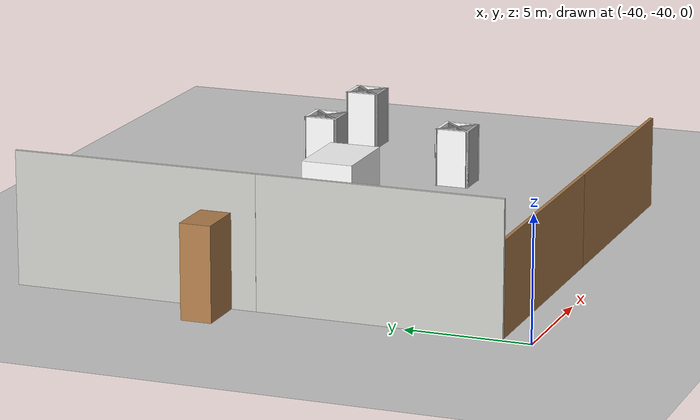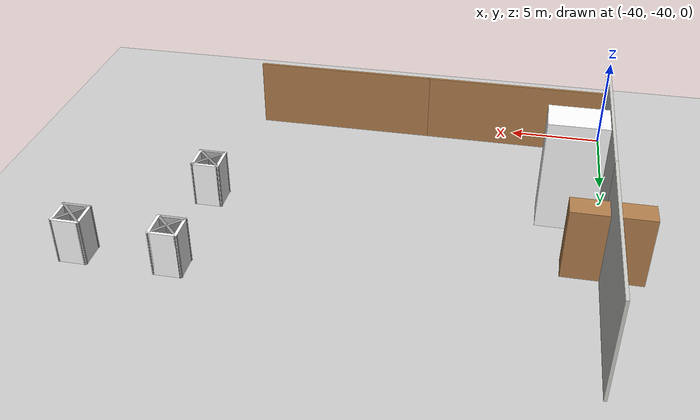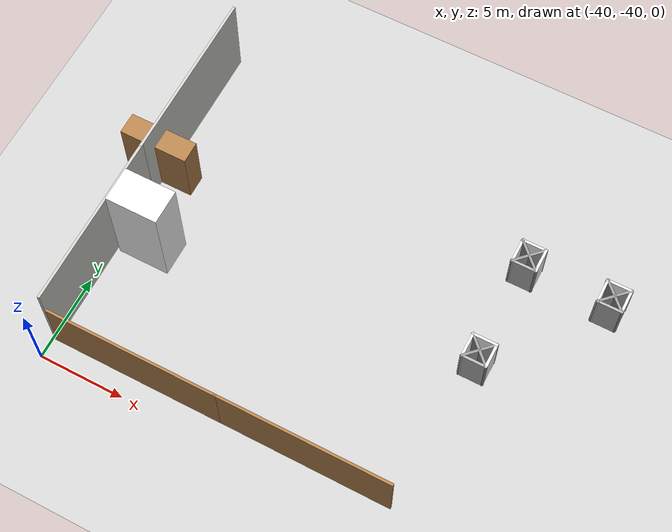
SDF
<sdf version="1.7">
 <world name="default">
  <model name="ground_plane">
   <static>1</static>
   <link name="link">
    <collision name="collision">
     <geometry><plane><normal>0 0 1</normal><size>100 100</size></plane></geometry>
     <surface>
      <contact><collide_bitmask>65535</collide_bitmask></contact>
      <friction><ode><mu>100</mu><mu2>50</mu2></ode></friction>
     </surface>
    </collision>
    <visual name="visual">
     <cast_shadows>0</cast_shadows>
     <geometry><plane><normal>0 0 1</normal><size>100 100</size></plane></geometry>
     <material>
      <script><uri>file://media/materials/scripts/gazebo.material</uri><name>Gazebo/Grey</name></script>
     </material>
    </visual>
   </link>
  </model>
  <model name="Untitled_0_clone_3">
   <link name="Wall_2">
    <pose>-0.3075 -1.8625 0 0 0 -1.5708</pose>
    <inertial>
     <mass>1</mass>
     <inertia><ixx>1</ixx><ixy>0</ixy><ixz>0</ixz><iyy>1</iyy><iyz>0</iyz><izz>1</izz></inertia>
    </inertial>
    <visual name="Wall_2_Visual">
     <pose>0 0 2.7 0 -0 0</pose>
     <geometry><box><size>10 0.15 5.4</size></box></geometry>
     <material>
      <script><uri>file://media/materials/scripts/gazebo.material</uri><name>Gazebo/CeilingTiled</name></script>
      <ambient>1 1 1 1</ambient>
      <shader type="pixel"><normal_map>__default__</normal_map></shader>
      <diffuse>1 1 1 1</diffuse>
      <specular>0 0 0 1</specular>
      <emissive>0 0 0 1</emissive>
     </material>
     <meta><layer>0</layer></meta>
    </visual>
    <collision name="Wall_2_Collision">
     <pose>0 0 2.7 0 -0 0</pose>
     <geometry><box><size>10 0.15 5.4</size></box></geometry>
     <surface>
      <friction>
       <ode><mu>1</mu><mu2>1</mu2><fdir1>0 0 0</fdir1><slip1>0</slip1><slip2>0</slip2></ode>
       <torsional>
        <coefficient>1</coefficient>
        <patch_radius>0</patch_radius>
        <surface_radius>0</surface_radius>
        <use_patch_radius>1</use_patch_radius>
        <ode><slip>0</slip></ode>
       </torsional>
      </friction>
      <bounce><restitution_coefficient>0</restitution_coefficient><threshold>1e+06</threshold></bounce>
      <contact>
       <collide_without_contact>0</collide_without_contact>
       <collide_without_contact_bitmask>1</collide_without_contact_bitmask>
       <collide_bitmask>1</collide_bitmask>
       <ode>
        <soft_cfm>0</soft_cfm>
        <soft_erp>0.2</soft_erp>
        <kp>1e+13</kp>
        <kd>1</kd>
        <max_vel>0.01</max_vel>
        <min_depth>0</min_depth>
       </ode>
       <bullet>
        <split_impulse>1</split_impulse>
        <split_impulse_penetration_threshold>-0.01</split_impulse_penetration_threshold>
        <soft_cfm>0</soft_cfm>
        <soft_erp>0.2</soft_erp>
        <kp>1e+13</kp>
        <kd>1</kd>
       </bullet>
      </contact>
     </surface>
    </collision>
   </link>
   <static>1</static>
   <pose>-39.511 -22.1279 0 0 -0 0</pose>
  </model>
  <model name="Untitled_0_clone_4">
   <link name="Wall_2">
    <pose>-0.3075 -1.8625 0 0 0 -1.5708</pose>
    <inertial>
     <mass>1</mass>
     <inertia><ixx>1</ixx><ixy>0</ixy><ixz>0</ixz><iyy>1</iyy><iyz>0</iyz><izz>1</izz></inertia>
    </inertial>
    <visual name="Wall_2_Visual">
     <pose>0 0 2.7 0 -0 0</pose>
     <geometry><box><size>10 0.15 5.4</size></box></geometry>
     <material>
      <script><uri>file://media/materials/scripts/gazebo.material</uri><name>Gazebo/CeilingTiled</name></script>
      <ambient>1 1 1 1</ambient>
      <shader type="pixel"><normal_map>__default__</normal_map></shader>
      <diffuse>1 1 1 1</diffuse>
      <specular>0 0 0 1</specular>
      <emissive>0 0 0 1</emissive>
     </material>
     <meta><layer>0</layer></meta>
    </visual>
    <collision name="Wall_2_Collision">
     <pose>0 0 2.7 0 -0 0</pose>
     <geometry><box><size>10 0.15 5.4</size></box></geometry>
     <surface>
      <friction>
       <ode><mu>1</mu><mu2>1</mu2><fdir1>0 0 0</fdir1><slip1>0</slip1><slip2>0</slip2></ode>
       <torsional>
        <coefficient>1</coefficient>
        <patch_radius>0</patch_radius>
        <surface_radius>0</surface_radius>
        <use_patch_radius>1</use_patch_radius>
        <ode><slip>0</slip></ode>
       </torsional>
      </friction>
      <bounce><restitution_coefficient>0</restitution_coefficient><threshold>1e+06</threshold></bounce>
      <contact>
       <collide_without_contact>0</collide_without_contact>
       <collide_without_contact_bitmask>1</collide_without_contact_bitmask>
       <collide_bitmask>1</collide_bitmask>
       <ode>
        <soft_cfm>0</soft_cfm>
        <soft_erp>0.2</soft_erp>
        <kp>1e+13</kp>
        <kd>1</kd>
        <max_vel>0.01</max_vel>
        <min_depth>0</min_depth>
       </ode>
       <bullet>
        <split_impulse>1</split_impulse>
        <split_impulse_penetration_threshold>-0.01</split_impulse_penetration_threshold>
        <soft_cfm>0</soft_cfm>
        <soft_erp>0.2</soft_erp>
        <kp>1e+13</kp>
        <kd>1</kd>
       </bullet>
      </contact>
     </surface>
    </collision>
   </link>
   <static>1</static>
   <pose>-39.5068 -31.9659 0 0 -0 0</pose>
  </model>
  <model name="Untitled_clone_clone_1_clone">
   <link name="Wall_0">
    <pose>-0.8775 -4.2975 0 0 -0 0</pose>
    <inertial>
     <mass>1</mass>
     <inertia><ixx>1</ixx><ixy>0</ixy><ixz>0</ixz><iyy>1</iyy><iyz>0</iyz><izz>1</izz></inertia>
    </inertial>
    <visual name="Wall_0_Visual">
     <pose>0 0 1.9 0 -0 0</pose>
     <geometry><box><size>10 0.15 3.8</size></box></geometry>
     <material>
      <script><uri>file://media/materials/scripts/gazebo.material</uri><name>Gazebo/Wood</name></script>
      <ambient>1 1 1 1</ambient>
      <shader type="pixel"><normal_map>__default__</normal_map></shader>
      <diffuse>1 1 1 1</diffuse>
      <specular>0.2 0.2 0.2 1</specular>
      <emissive>0 0 0 1</emissive>
     </material>
     <meta><layer>0</layer></meta>
    </visual>
    <collision name="Wall_0_Collision">
     <pose>0 0 1.9 0 -0 0</pose>
     <geometry><box><size>10 0.15 3.8</size></box></geometry>
     <surface>
      <friction>
       <ode><mu>1</mu><mu2>1</mu2><fdir1>0 0 0</fdir1><slip1>0</slip1><slip2>0</slip2></ode>
       <torsional>
        <coefficient>1</coefficient>
        <patch_radius>0</patch_radius>
        <surface_radius>0</surface_radius>
        <use_patch_radius>1</use_patch_radius>
        <ode><slip>0</slip></ode>
       </torsional>
      </friction>
      <bounce><restitution_coefficient>0</restitution_coefficient><threshold>1e+06</threshold></bounce>
      <contact>
       <collide_without_contact>0</collide_without_contact>
       <collide_without_contact_bitmask>1</collide_without_contact_bitmask>
       <collide_bitmask>1</collide_bitmask>
       <ode>
        <soft_cfm>0</soft_cfm>
        <soft_erp>0.2</soft_erp>
        <kp>1e+13</kp>
        <kd>1</kd>
        <max_vel>0.01</max_vel>
        <min_depth>0</min_depth>
       </ode>
       <bullet>
        <split_impulse>1</split_impulse>
        <split_impulse_penetration_threshold>-0.01</split_impulse_penetration_threshold>
        <soft_cfm>0</soft_cfm>
        <soft_erp>0.2</soft_erp>
        <kp>1e+13</kp>
        <kd>1</kd>
       </bullet>
      </contact>
     </surface>
    </collision>
   </link>
   <static>1</static>
   <pose>-33.9208 -34.4502 0 0 -0 0</pose>
  </model>
  <model name="Untitled_clone_clone_1_clone_0">
   <link name="Wall_0">
    <pose>-0.8775 -4.2975 0 0 -0 0</pose>
    <inertial>
     <mass>1</mass>
     <inertia><ixx>1</ixx><ixy>0</ixy><ixz>0</ixz><iyy>1</iyy><iyz>0</iyz><izz>1</izz></inertia>
    </inertial>
    <visual name="Wall_0_Visual">
     <pose>0 0 1.9 0 -0 0</pose>
     <geometry><box><size>10 0.15 3.8</size></box></geometry>
     <material>
      <script><uri>file://media/materials/scripts/gazebo.material</uri><name>Gazebo/Wood</name></script>
      <ambient>1 1 1 1</ambient>
      <shader type="pixel"><normal_map>__default__</normal_map></shader>
      <diffuse>1 1 1 1</diffuse>
      <specular>0.2 0.2 0.2 1</specular>
      <emissive>0 0 0 1</emissive>
     </material>
     <meta><layer>0</layer></meta>
    </visual>
    <collision name="Wall_0_Collision">
     <pose>0 0 1.9 0 -0 0</pose>
     <geometry><box><size>10 0.15 3.8</size></box></geometry>
     <surface>
      <friction>
       <ode><mu>1</mu><mu2>1</mu2><fdir1>0 0 0</fdir1><slip1>0</slip1><slip2>0</slip2></ode>
       <torsional>
        <coefficient>1</coefficient>
        <patch_radius>0</patch_radius>
        <surface_radius>0</surface_radius>
        <use_patch_radius>1</use_patch_radius>
        <ode><slip>0</slip></ode>
       </torsional>
      </friction>
      <bounce><restitution_coefficient>0</restitution_coefficient><threshold>1e+06</threshold></bounce>
      <contact>
       <collide_without_contact>0</collide_without_contact>
       <collide_without_contact_bitmask>1</collide_without_contact_bitmask>
       <collide_bitmask>1</collide_bitmask>
       <ode>
        <soft_cfm>0</soft_cfm>
        <soft_erp>0.2</soft_erp>
        <kp>1e+13</kp>
        <kd>1</kd>
        <max_vel>0.01</max_vel>
        <min_depth>0</min_depth>
       </ode>
       <bullet>
        <split_impulse>1</split_impulse>
        <split_impulse_penetration_threshold>-0.01</split_impulse_penetration_threshold>
        <soft_cfm>0</soft_cfm>
        <soft_erp>0.2</soft_erp>
        <kp>1e+13</kp>
        <kd>1</kd>
       </bullet>
      </contact>
     </surface>
    </collision>
   </link>
   <static>1</static>
   <pose>-24.0991 -34.448 0 0 -0 0</pose>
  </model>
  <model name="Untitled_clone_clone_0_clone_clone_0_clone">
   <link name="Wall_0">
    <pose>-0.877501 -4.2975 0 0 -0 0</pose>
    <inertial>
     <mass>1</mass>
     <inertia><ixx>1</ixx><ixy>0</ixy><ixz>0</ixz><iyy>1</iyy><iyz>0</iyz><izz>1</izz></inertia>
    </inertial>
    <visual name="Wall_0_Visual">
     <pose>0 0 1.9 0 -0 0</pose>
     <geometry><box><size>4 1.25 3.8</size></box></geometry>
     <material>
      <script><uri>file://media/materials/scripts/gazebo.material</uri><name>Gazebo/Wood</name></script>
      <ambient>1 1 1 1</ambient>
      <shader type="pixel"><normal_map>__default__</normal_map></shader>
      <diffuse>1 1 1 1</diffuse>
      <specular>0.2 0.2 0.2 1</specular>
      <emissive>0 0 0 1</emissive>
     </material>
     <meta><layer>0</layer></meta>
    </visual>
    <collision name="Wall_0_Collision">
     <pose>0 0 1.9 0 -0 0</pose>
     <geometry><box><size>4 1.25 3.8</size></box></geometry>
     <surface>
      <friction>
       <ode><mu>1</mu><mu2>1</mu2><fdir1>0 0 0</fdir1><slip1>0</slip1><slip2>0</slip2></ode>
       <torsional>
        <coefficient>1</coefficient>
        <patch_radius>0</patch_radius>
        <surface_radius>0</surface_radius>
        <use_patch_radius>1</use_patch_radius>
        <ode><slip>0</slip></ode>
       </torsional>
      </friction>
      <bounce><restitution_coefficient>0</restitution_coefficient><threshold>1e+06</threshold></bounce>
      <contact>
       <collide_without_contact>0</collide_without_contact>
       <collide_without_contact_bitmask>1</collide_without_contact_bitmask>
       <collide_bitmask>1</collide_bitmask>
       <ode>
        <soft_cfm>0</soft_cfm>
        <soft_erp>0.2</soft_erp>
        <kp>1e+13</kp>
        <kd>1</kd>
        <max_vel>0.01</max_vel>
        <min_depth>0</min_depth>
       </ode>
       <bullet>
        <split_impulse>1</split_impulse>
        <split_impulse_penetration_threshold>-0.01</split_impulse_penetration_threshold>
        <soft_cfm>0</soft_cfm>
        <soft_erp>0.2</soft_erp>
        <kp>1e+13</kp>
        <kd>1</kd>
       </bullet>
      </contact>
     </surface>
    </collision>
   </link>
   <static>1</static>
   <pose>-39.0031 -23.066 0 0 -0 0</pose>
  </model>
  <model name="Untitled_clone_clone_0_clone_clone_0_clone_0_clone_0_clone_0_clone_2">
   <link name="Wall_0">
    <pose>-0.877501 -4.2975 0 0 -0 0</pose>
    <inertial>
     <mass>1</mass>
     <inertia><ixx>1</ixx><ixy>0</ixy><ixz>0</ixz><iyy>1</iyy><iyz>0</iyz><izz>1</izz></inertia>
    </inertial>
    <visual name="Wall_0_Visual">
     <pose>0 0 3 0 -0 0</pose>
     <geometry><box><size>3 2 6</size></box></geometry>
     <material>
      <script><uri>file://media/materials/scripts/gazebo.material</uri><name>Gazebo/CoM</name></script>
      <ambient>1 1 1 1</ambient>
      <shader type="pixel"><normal_map>__default__</normal_map></shader>
      <diffuse>1 1 1 1</diffuse>
      <specular>0.2 0.2 0.2 1</specular>
      <emissive>0 0 0 1</emissive>
     </material>
     <meta><layer>0</layer></meta>
    </visual>
    <collision name="Wall_0_Collision">
     <pose>0 0 3 0 -0 0</pose>
     <geometry><box><size>3 2 6</size></box></geometry>
     <surface>
      <friction>
       <ode><mu>1</mu><mu2>1</mu2><fdir1>0 0 0</fdir1><slip1>0</slip1><slip2>0</slip2></ode>
       <torsional>
        <coefficient>1</coefficient>
        <patch_radius>0</patch_radius>
        <surface_radius>0</surface_radius>
        <use_patch_radius>1</use_patch_radius>
        <ode><slip>0</slip></ode>
       </torsional>
      </friction>
      <bounce><restitution_coefficient>0</restitution_coefficient><threshold>1e+06</threshold></bounce>
      <contact>
       <collide_without_contact>0</collide_without_contact>
       <collide_without_contact_bitmask>1</collide_without_contact_bitmask>
       <collide_bitmask>1</collide_bitmask>
       <ode>
        <soft_cfm>0</soft_cfm>
        <soft_erp>0.2</soft_erp>
        <kp>1e+13</kp>
        <kd>1</kd>
        <max_vel>0.01</max_vel>
        <min_depth>0</min_depth>
       </ode>
       <bullet>
        <split_impulse>1</split_impulse>
        <split_impulse_penetration_threshold>-0.01</split_impulse_penetration_threshold>
        <soft_cfm>0</soft_cfm>
        <soft_erp>0.2</soft_erp>
        <kp>1e+13</kp>
        <kd>1</kd>
       </bullet>
      </contact>
     </surface>
    </collision>
   </link>
   <static>1</static>
   <pose>-37.1896 -27.4443 0 0 -0 0</pose>
  </model>
  <model name="Untitled_1_clone_3_clone_0">
   <link name="Wall_10">
    <pose>4.92197 -3.43197 0 0 -0 1.5708</pose>
    <inertial>
     <mass>1</mass>
     <inertia><ixx>1</ixx><ixy>0</ixy><ixz>0</ixz><iyy>1</iyy><iyz>0</iyz><izz>1</izz></inertia>
    </inertial>
    <visual name="Wall_10_Visual">
     <pose>0 0 1.25 0 -0 0</pose>
     <geometry><box><size>1.5 0.15 2.5</size></box></geometry>
     <material>
      <script><uri>file://media/materials/scripts/gazebo.material</uri><name>Gazebo/CoM</name></script>
      <ambient>1 1 1 1</ambient>
      <shader type="pixel"><normal_map>__default__</normal_map></shader>
      <diffuse>1 1 1 1</diffuse>
      <specular>0 0 0 1</specular>
      <emissive>0 0 0 1</emissive>
     </material>
     <meta><layer>0</layer></meta>
    </visual>
    <collision name="Wall_10_Collision">
     <pose>0 0 1.25 0 -0 0</pose>
     <geometry><box><size>1.5 0.15 2.5</size></box></geometry>
     <surface>
      <friction>
       <ode><mu>1</mu><mu2>1</mu2><fdir1>0 0 0</fdir1><slip1>0</slip1><slip2>0</slip2></ode>
       <torsional>
        <coefficient>1</coefficient>
        <patch_radius>0</patch_radius>
        <surface_radius>0</surface_radius>
        <use_patch_radius>1</use_patch_radius>
        <ode><slip>0</slip></ode>
       </torsional>
      </friction>
      <bounce><restitution_coefficient>0</restitution_coefficient><threshold>1e+06</threshold></bounce>
      <contact>
       <collide_without_contact>0</collide_without_contact>
       <collide_without_contact_bitmask>1</collide_without_contact_bitmask>
       <collide_bitmask>1</collide_bitmask>
       <ode>
        <soft_cfm>0</soft_cfm>
        <soft_erp>0.2</soft_erp>
        <kp>1e+13</kp>
        <kd>1</kd>
        <max_vel>0.01</max_vel>
        <min_depth>0</min_depth>
       </ode>
       <bullet>
        <split_impulse>1</split_impulse>
        <split_impulse_penetration_threshold>-0.01</split_impulse_penetration_threshold>
        <soft_cfm>0</soft_cfm>
        <soft_erp>0.2</soft_erp>
        <kp>1e+13</kp>
        <kd>1</kd>
       </bullet>
      </contact>
     </surface>
    </collision>
   </link>
   <link name="Wall_11">
    <pose>5.59697 -3.43197 0 0 0 -0.785398</pose>
    <visual name="Wall_11_Visual">
     <pose>0 0 1.25 0 -0 0</pose>
     <geometry><box><size>2.05919 0.15 2.5</size></box></geometry>
     <material>
      <script><uri>file://media/materials/scripts/gazebo.material</uri><name>Gazebo/Grey</name></script>
      <ambient>1 1 1 1</ambient>
      <shader type="pixel"/>
     </material>
     <meta><layer>0</layer></meta>
    </visual>
    <collision name="Wall_11_Collision">
     <pose>0 0 1.25 0 -0 0</pose>
     <geometry><box><size>2.05919 0.15 2.5</size></box></geometry>
     <surface>
      <friction>
       <ode><mu>1</mu><mu2>1</mu2><fdir1>0 0 0</fdir1><slip1>0</slip1><slip2>0</slip2></ode>
       <torsional>
        <coefficient>1</coefficient>
        <patch_radius>0</patch_radius>
        <surface_radius>0</surface_radius>
        <use_patch_radius>1</use_patch_radius>
        <ode><slip>0</slip></ode>
       </torsional>
      </friction>
      <bounce><restitution_coefficient>0</restitution_coefficient><threshold>1e+06</threshold></bounce>
      <contact>
       <collide_without_contact>0</collide_without_contact>
       <collide_without_contact_bitmask>1</collide_without_contact_bitmask>
       <collide_bitmask>1</collide_bitmask>
       <ode>
        <soft_cfm>0</soft_cfm>
        <soft_erp>0.2</soft_erp>
        <kp>1e+13</kp>
        <kd>1</kd>
        <max_vel>0.01</max_vel>
        <min_depth>0</min_depth>
       </ode>
       <bullet>
        <split_impulse>1</split_impulse>
        <split_impulse_penetration_threshold>-0.01</split_impulse_penetration_threshold>
        <soft_cfm>0</soft_cfm>
        <soft_erp>0.2</soft_erp>
        <kp>1e+13</kp>
        <kd>1</kd>
       </bullet>
      </contact>
     </surface>
    </collision>
   </link>
   <link name="Wall_13">
    <pose>5.59697 -3.43197 0 0 -0 0.785398</pose>
    <visual name="Wall_13_Visual">
     <pose>0 0 1.25 0 -0 0</pose>
     <geometry><box><size>2.05919 0.15 2.5</size></box></geometry>
     <material>
      <script><uri>file://media/materials/scripts/gazebo.material</uri><name>Gazebo/Grey</name></script>
      <ambient>1 1 1 1</ambient>
      <shader type="pixel"/>
     </material>
     <meta><layer>0</layer></meta>
    </visual>
    <collision name="Wall_13_Collision">
     <pose>0 0 1.25 0 -0 0</pose>
     <geometry><box><size>2.05919 0.15 2.5</size></box></geometry>
     <surface>
      <friction>
       <ode><mu>1</mu><mu2>1</mu2><fdir1>0 0 0</fdir1><slip1>0</slip1><slip2>0</slip2></ode>
       <torsional>
        <coefficient>1</coefficient>
        <patch_radius>0</patch_radius>
        <surface_radius>0</surface_radius>
        <use_patch_radius>1</use_patch_radius>
        <ode><slip>0</slip></ode>
       </torsional>
      </friction>
      <bounce><restitution_coefficient>0</restitution_coefficient><threshold>1e+06</threshold></bounce>
      <contact>
       <collide_without_contact>0</collide_without_contact>
       <collide_without_contact_bitmask>1</collide_without_contact_bitmask>
       <collide_bitmask>1</collide_bitmask>
       <ode>
        <soft_cfm>0</soft_cfm>
        <soft_erp>0.2</soft_erp>
        <kp>1e+13</kp>
        <kd>1</kd>
        <max_vel>0.01</max_vel>
        <min_depth>0</min_depth>
       </ode>
       <bullet>
        <split_impulse>1</split_impulse>
        <split_impulse_penetration_threshold>-0.01</split_impulse_penetration_threshold>
        <soft_cfm>0</soft_cfm>
        <soft_erp>0.2</soft_erp>
        <kp>1e+13</kp>
        <kd>1</kd>
       </bullet>
      </contact>
     </surface>
    </collision>
   </link>
   <link name="Wall_7">
    <pose>5.59697 -2.75697 0 0 -0 0</pose>
    <inertial>
     <mass>1</mass>
     <inertia><ixx>1</ixx><ixy>0</ixy><ixz>0</ixz><iyy>1</iyy><iyz>0</iyz><izz>1</izz></inertia>
    </inertial>
    <visual name="Wall_7_Visual">
     <pose>0 0 1.25 0 -0 0</pose>
     <geometry><box><size>1.5 0.15 2.5</size></box></geometry>
     <material>
      <script><uri>file://media/materials/scripts/gazebo.material</uri><name>Gazebo/CoM</name></script>
      <ambient>1 1 1 1</ambient>
      <shader type="pixel"><normal_map>__default__</normal_map></shader>
      <diffuse>1 1 1 1</diffuse>
      <specular>0 0 0 1</specular>
      <emissive>0 0 0 1</emissive>
     </material>
     <meta><layer>0</layer></meta>
    </visual>
    <collision name="Wall_7_Collision">
     <pose>0 0 1.25 0 -0 0</pose>
     <geometry><box><size>1.5 0.15 2.5</size></box></geometry>
     <surface>
      <friction>
       <ode><mu>1</mu><mu2>1</mu2><fdir1>0 0 0</fdir1><slip1>0</slip1><slip2>0</slip2></ode>
       <torsional>
        <coefficient>1</coefficient>
        <patch_radius>0</patch_radius>
        <surface_radius>0</surface_radius>
        <use_patch_radius>1</use_patch_radius>
        <ode><slip>0</slip></ode>
       </torsional>
      </friction>
      <bounce><restitution_coefficient>0</restitution_coefficient><threshold>1e+06</threshold></bounce>
      <contact>
       <collide_without_contact>0</collide_without_contact>
       <collide_without_contact_bitmask>1</collide_without_contact_bitmask>
       <collide_bitmask>1</collide_bitmask>
       <ode>
        <soft_cfm>0</soft_cfm>
        <soft_erp>0.2</soft_erp>
        <kp>1e+13</kp>
        <kd>1</kd>
        <max_vel>0.01</max_vel>
        <min_depth>0</min_depth>
       </ode>
       <bullet>
        <split_impulse>1</split_impulse>
        <split_impulse_penetration_threshold>-0.01</split_impulse_penetration_threshold>
        <soft_cfm>0</soft_cfm>
        <soft_erp>0.2</soft_erp>
        <kp>1e+13</kp>
        <kd>1</kd>
       </bullet>
      </contact>
     </surface>
    </collision>
   </link>
   <link name="Wall_8">
    <pose>6.27197 -3.43197 0 0 0 -1.5708</pose>
    <inertial>
     <mass>1</mass>
     <inertia><ixx>1</ixx><ixy>0</ixy><ixz>0</ixz><iyy>1</iyy><iyz>0</iyz><izz>1</izz></inertia>
    </inertial>
    <visual name="Wall_8_Visual">
     <pose>0 0 1.25 0 -0 0</pose>
     <geometry><box><size>1.5 0.15 2.5</size></box></geometry>
     <material>
      <script><uri>file://media/materials/scripts/gazebo.material</uri><name>Gazebo/CoM</name></script>
      <ambient>1 1 1 1</ambient>
      <shader type="pixel"><normal_map>__default__</normal_map></shader>
      <diffuse>1 1 1 1</diffuse>
      <specular>0 0 0 1</specular>
      <emissive>0 0 0 1</emissive>
     </material>
     <meta><layer>0</layer></meta>
    </visual>
    <collision name="Wall_8_Collision">
     <pose>0 0 1.25 0 -0 0</pose>
     <geometry><box><size>1.5 0.15 2.5</size></box></geometry>
     <surface>
      <friction>
       <ode><mu>1</mu><mu2>1</mu2><fdir1>0 0 0</fdir1><slip1>0</slip1><slip2>0</slip2></ode>
       <torsional>
        <coefficient>1</coefficient>
        <patch_radius>0</patch_radius>
        <surface_radius>0</surface_radius>
        <use_patch_radius>1</use_patch_radius>
        <ode><slip>0</slip></ode>
       </torsional>
      </friction>
      <bounce><restitution_coefficient>0</restitution_coefficient><threshold>1e+06</threshold></bounce>
      <contact>
       <collide_without_contact>0</collide_without_contact>
       <collide_without_contact_bitmask>1</collide_without_contact_bitmask>
       <collide_bitmask>1</collide_bitmask>
       <ode>
        <soft_cfm>0</soft_cfm>
        <soft_erp>0.2</soft_erp>
        <kp>1e+13</kp>
        <kd>1</kd>
        <max_vel>0.01</max_vel>
        <min_depth>0</min_depth>
       </ode>
       <bullet>
        <split_impulse>1</split_impulse>
        <split_impulse_penetration_threshold>-0.01</split_impulse_penetration_threshold>
        <soft_cfm>0</soft_cfm>
        <soft_erp>0.2</soft_erp>
        <kp>1e+13</kp>
        <kd>1</kd>
       </bullet>
      </contact>
     </surface>
    </collision>
   </link>
   <link name="Wall_9">
    <pose>5.59697 -4.10697 0 0 -0 3.14159</pose>
    <inertial>
     <mass>1</mass>
     <inertia><ixx>1</ixx><ixy>0</ixy><ixz>0</ixz><iyy>1</iyy><iyz>0</iyz><izz>1</izz></inertia>
    </inertial>
    <visual name="Wall_9_Visual">
     <pose>0 0 1.25 0 -0 0</pose>
     <geometry><box><size>1.5 0.15 2.5</size></box></geometry>
     <material>
      <script><uri>file://media/materials/scripts/gazebo.material</uri><name>Gazebo/CoM</name></script>
      <ambient>1 1 1 1</ambient>
      <shader type="pixel"><normal_map>__default__</normal_map></shader>
      <diffuse>0.7 0.7 0.7 1</diffuse>
      <specular>0.01 0.01 0.01 1</specular>
      <emissive>0 0 0 1</emissive>
     </material>
     <meta><layer>0</layer></meta>
    </visual>
    <collision name="Wall_9_Collision">
     <pose>0 0 1.25 0 -0 0</pose>
     <geometry><box><size>1.5 0.15 2.5</size></box></geometry>
     <surface>
      <friction>
       <ode><mu>1</mu><mu2>1</mu2><fdir1>0 0 0</fdir1><slip1>0</slip1><slip2>0</slip2></ode>
       <torsional>
        <coefficient>1</coefficient>
        <patch_radius>0</patch_radius>
        <surface_radius>0</surface_radius>
        <use_patch_radius>1</use_patch_radius>
        <ode><slip>0</slip></ode>
       </torsional>
      </friction>
      <bounce><restitution_coefficient>0</restitution_coefficient><threshold>1e+06</threshold></bounce>
      <contact>
       <collide_without_contact>0</collide_without_contact>
       <collide_without_contact_bitmask>1</collide_without_contact_bitmask>
       <collide_bitmask>1</collide_bitmask>
       <ode>
        <soft_cfm>0</soft_cfm>
        <soft_erp>0.2</soft_erp>
        <kp>1e+13</kp>
        <kd>1</kd>
        <max_vel>0.01</max_vel>
        <min_depth>0</min_depth>
       </ode>
       <bullet>
        <split_impulse>1</split_impulse>
        <split_impulse_penetration_threshold>-0.01</split_impulse_penetration_threshold>
        <soft_cfm>0</soft_cfm>
        <soft_erp>0.2</soft_erp>
        <kp>1e+13</kp>
        <kd>1</kd>
       </bullet>
      </contact>
     </surface>
    </collision>
   </link>
   <static>1</static>
   <pose>-25.0477 -26.5139 0 0 -0 0</pose>
  </model>
  <model name="Untitled_1_clone_3_clone_1">
   <link name="Wall_10">
    <pose>4.92197 -3.43197 0 0 -0 1.5708</pose>
    <inertial>
     <mass>1</mass>
     <inertia><ixx>1</ixx><ixy>0</ixy><ixz>0</ixz><iyy>1</iyy><iyz>0</iyz><izz>1</izz></inertia>
    </inertial>
    <visual name="Wall_10_Visual">
     <pose>0 0 1.25 0 -0 0</pose>
     <geometry><box><size>1.5 0.15 2.5</size></box></geometry>
     <material>
      <script><uri>file://media/materials/scripts/gazebo.material</uri><name>Gazebo/CoM</name></script>
      <ambient>1 1 1 1</ambient>
      <shader type="pixel"><normal_map>__default__</normal_map></shader>
      <diffuse>1 1 1 1</diffuse>
      <specular>0 0 0 1</specular>
      <emissive>0 0 0 1</emissive>
     </material>
     <meta><layer>0</layer></meta>
    </visual>
    <collision name="Wall_10_Collision">
     <pose>0 0 1.25 0 -0 0</pose>
     <geometry><box><size>1.5 0.15 2.5</size></box></geometry>
     <surface>
      <friction>
       <ode><mu>1</mu><mu2>1</mu2><fdir1>0 0 0</fdir1><slip1>0</slip1><slip2>0</slip2></ode>
       <torsional>
        <coefficient>1</coefficient>
        <patch_radius>0</patch_radius>
        <surface_radius>0</surface_radius>
        <use_patch_radius>1</use_patch_radius>
        <ode><slip>0</slip></ode>
       </torsional>
      </friction>
      <bounce><restitution_coefficient>0</restitution_coefficient><threshold>1e+06</threshold></bounce>
      <contact>
       <collide_without_contact>0</collide_without_contact>
       <collide_without_contact_bitmask>1</collide_without_contact_bitmask>
       <collide_bitmask>1</collide_bitmask>
       <ode>
        <soft_cfm>0</soft_cfm>
        <soft_erp>0.2</soft_erp>
        <kp>1e+13</kp>
        <kd>1</kd>
        <max_vel>0.01</max_vel>
        <min_depth>0</min_depth>
       </ode>
       <bullet>
        <split_impulse>1</split_impulse>
        <split_impulse_penetration_threshold>-0.01</split_impulse_penetration_threshold>
        <soft_cfm>0</soft_cfm>
        <soft_erp>0.2</soft_erp>
        <kp>1e+13</kp>
        <kd>1</kd>
       </bullet>
      </contact>
     </surface>
    </collision>
   </link>
   <link name="Wall_11">
    <pose>5.59697 -3.43197 0 0 0 -0.785398</pose>
    <visual name="Wall_11_Visual">
     <pose>0 0 1.25 0 -0 0</pose>
     <geometry><box><size>2.05919 0.15 2.5</size></box></geometry>
     <material>
      <script><uri>file://media/materials/scripts/gazebo.material</uri><name>Gazebo/Grey</name></script>
      <ambient>1 1 1 1</ambient>
      <shader type="pixel"/>
     </material>
     <meta><layer>0</layer></meta>
    </visual>
    <collision name="Wall_11_Collision">
     <pose>0 0 1.25 0 -0 0</pose>
     <geometry><box><size>2.05919 0.15 2.5</size></box></geometry>
     <surface>
      <friction>
       <ode><mu>1</mu><mu2>1</mu2><fdir1>0 0 0</fdir1><slip1>0</slip1><slip2>0</slip2></ode>
       <torsional>
        <coefficient>1</coefficient>
        <patch_radius>0</patch_radius>
        <surface_radius>0</surface_radius>
        <use_patch_radius>1</use_patch_radius>
        <ode><slip>0</slip></ode>
       </torsional>
      </friction>
      <bounce><restitution_coefficient>0</restitution_coefficient><threshold>1e+06</threshold></bounce>
      <contact>
       <collide_without_contact>0</collide_without_contact>
       <collide_without_contact_bitmask>1</collide_without_contact_bitmask>
       <collide_bitmask>1</collide_bitmask>
       <ode>
        <soft_cfm>0</soft_cfm>
        <soft_erp>0.2</soft_erp>
        <kp>1e+13</kp>
        <kd>1</kd>
        <max_vel>0.01</max_vel>
        <min_depth>0</min_depth>
       </ode>
       <bullet>
        <split_impulse>1</split_impulse>
        <split_impulse_penetration_threshold>-0.01</split_impulse_penetration_threshold>
        <soft_cfm>0</soft_cfm>
        <soft_erp>0.2</soft_erp>
        <kp>1e+13</kp>
        <kd>1</kd>
       </bullet>
      </contact>
     </surface>
    </collision>
   </link>
   <link name="Wall_13">
    <pose>5.59697 -3.43197 0 0 -0 0.785398</pose>
    <visual name="Wall_13_Visual">
     <pose>0 0 1.25 0 -0 0</pose>
     <geometry><box><size>2.05919 0.15 2.5</size></box></geometry>
     <material>
      <script><uri>file://media/materials/scripts/gazebo.material</uri><name>Gazebo/Grey</name></script>
      <ambient>1 1 1 1</ambient>
      <shader type="pixel"/>
     </material>
     <meta><layer>0</layer></meta>
    </visual>
    <collision name="Wall_13_Collision">
     <pose>0 0 1.25 0 -0 0</pose>
     <geometry><box><size>2.05919 0.15 2.5</size></box></geometry>
     <surface>
      <friction>
       <ode><mu>1</mu><mu2>1</mu2><fdir1>0 0 0</fdir1><slip1>0</slip1><slip2>0</slip2></ode>
       <torsional>
        <coefficient>1</coefficient>
        <patch_radius>0</patch_radius>
        <surface_radius>0</surface_radius>
        <use_patch_radius>1</use_patch_radius>
        <ode><slip>0</slip></ode>
       </torsional>
      </friction>
      <bounce><restitution_coefficient>0</restitution_coefficient><threshold>1e+06</threshold></bounce>
      <contact>
       <collide_without_contact>0</collide_without_contact>
       <collide_without_contact_bitmask>1</collide_without_contact_bitmask>
       <collide_bitmask>1</collide_bitmask>
       <ode>
        <soft_cfm>0</soft_cfm>
        <soft_erp>0.2</soft_erp>
        <kp>1e+13</kp>
        <kd>1</kd>
        <max_vel>0.01</max_vel>
        <min_depth>0</min_depth>
       </ode>
       <bullet>
        <split_impulse>1</split_impulse>
        <split_impulse_penetration_threshold>-0.01</split_impulse_penetration_threshold>
        <soft_cfm>0</soft_cfm>
        <soft_erp>0.2</soft_erp>
        <kp>1e+13</kp>
        <kd>1</kd>
       </bullet>
      </contact>
     </surface>
    </collision>
   </link>
   <link name="Wall_7">
    <pose>5.59697 -2.75697 0 0 -0 0</pose>
    <inertial>
     <mass>1</mass>
     <inertia><ixx>1</ixx><ixy>0</ixy><ixz>0</ixz><iyy>1</iyy><iyz>0</iyz><izz>1</izz></inertia>
    </inertial>
    <visual name="Wall_7_Visual">
     <pose>0 0 1.25 0 -0 0</pose>
     <geometry><box><size>1.5 0.15 2.5</size></box></geometry>
     <material>
      <script><uri>file://media/materials/scripts/gazebo.material</uri><name>Gazebo/CoM</name></script>
      <ambient>1 1 1 1</ambient>
      <shader type="pixel"><normal_map>__default__</normal_map></shader>
      <diffuse>1 1 1 1</diffuse>
      <specular>0 0 0 1</specular>
      <emissive>0 0 0 1</emissive>
     </material>
     <meta><layer>0</layer></meta>
    </visual>
    <collision name="Wall_7_Collision">
     <pose>0 0 1.25 0 -0 0</pose>
     <geometry><box><size>1.5 0.15 2.5</size></box></geometry>
     <surface>
      <friction>
       <ode><mu>1</mu><mu2>1</mu2><fdir1>0 0 0</fdir1><slip1>0</slip1><slip2>0</slip2></ode>
       <torsional>
        <coefficient>1</coefficient>
        <patch_radius>0</patch_radius>
        <surface_radius>0</surface_radius>
        <use_patch_radius>1</use_patch_radius>
        <ode><slip>0</slip></ode>
       </torsional>
      </friction>
      <bounce><restitution_coefficient>0</restitution_coefficient><threshold>1e+06</threshold></bounce>
      <contact>
       <collide_without_contact>0</collide_without_contact>
       <collide_without_contact_bitmask>1</collide_without_contact_bitmask>
       <collide_bitmask>1</collide_bitmask>
       <ode>
        <soft_cfm>0</soft_cfm>
        <soft_erp>0.2</soft_erp>
        <kp>1e+13</kp>
        <kd>1</kd>
        <max_vel>0.01</max_vel>
        <min_depth>0</min_depth>
       </ode>
       <bullet>
        <split_impulse>1</split_impulse>
        <split_impulse_penetration_threshold>-0.01</split_impulse_penetration_threshold>
        <soft_cfm>0</soft_cfm>
        <soft_erp>0.2</soft_erp>
        <kp>1e+13</kp>
        <kd>1</kd>
       </bullet>
      </contact>
     </surface>
    </collision>
   </link>
   <link name="Wall_8">
    <pose>6.27197 -3.43197 0 0 0 -1.5708</pose>
    <inertial>
     <mass>1</mass>
     <inertia><ixx>1</ixx><ixy>0</ixy><ixz>0</ixz><iyy>1</iyy><iyz>0</iyz><izz>1</izz></inertia>
    </inertial>
    <visual name="Wall_8_Visual">
     <pose>0 0 1.25 0 -0 0</pose>
     <geometry><box><size>1.5 0.15 2.5</size></box></geometry>
     <material>
      <script><uri>file://media/materials/scripts/gazebo.material</uri><name>Gazebo/CoM</name></script>
      <ambient>1 1 1 1</ambient>
      <shader type="pixel"><normal_map>__default__</normal_map></shader>
      <diffuse>1 1 1 1</diffuse>
      <specular>0 0 0 1</specular>
      <emissive>0 0 0 1</emissive>
     </material>
     <meta><layer>0</layer></meta>
    </visual>
    <collision name="Wall_8_Collision">
     <pose>0 0 1.25 0 -0 0</pose>
     <geometry><box><size>1.5 0.15 2.5</size></box></geometry>
     <surface>
      <friction>
       <ode><mu>1</mu><mu2>1</mu2><fdir1>0 0 0</fdir1><slip1>0</slip1><slip2>0</slip2></ode>
       <torsional>
        <coefficient>1</coefficient>
        <patch_radius>0</patch_radius>
        <surface_radius>0</surface_radius>
        <use_patch_radius>1</use_patch_radius>
        <ode><slip>0</slip></ode>
       </torsional>
      </friction>
      <bounce><restitution_coefficient>0</restitution_coefficient><threshold>1e+06</threshold></bounce>
      <contact>
       <collide_without_contact>0</collide_without_contact>
       <collide_without_contact_bitmask>1</collide_without_contact_bitmask>
       <collide_bitmask>1</collide_bitmask>
       <ode>
        <soft_cfm>0</soft_cfm>
        <soft_erp>0.2</soft_erp>
        <kp>1e+13</kp>
        <kd>1</kd>
        <max_vel>0.01</max_vel>
        <min_depth>0</min_depth>
       </ode>
       <bullet>
        <split_impulse>1</split_impulse>
        <split_impulse_penetration_threshold>-0.01</split_impulse_penetration_threshold>
        <soft_cfm>0</soft_cfm>
        <soft_erp>0.2</soft_erp>
        <kp>1e+13</kp>
        <kd>1</kd>
       </bullet>
      </contact>
     </surface>
    </collision>
   </link>
   <link name="Wall_9">
    <pose>5.59697 -4.10697 0 0 -0 3.14159</pose>
    <inertial>
     <mass>1</mass>
     <inertia><ixx>1</ixx><ixy>0</ixy><ixz>0</ixz><iyy>1</iyy><iyz>0</iyz><izz>1</izz></inertia>
    </inertial>
    <visual name="Wall_9_Visual">
     <pose>0 0 1.25 0 -0 0</pose>
     <geometry><box><size>1.5 0.15 2.5</size></box></geometry>
     <material>
      <script><uri>file://media/materials/scripts/gazebo.material</uri><name>Gazebo/CoM</name></script>
      <ambient>1 1 1 1</ambient>
      <shader type="pixel"><normal_map>__default__</normal_map></shader>
      <diffuse>0.7 0.7 0.7 1</diffuse>
      <specular>0.01 0.01 0.01 1</specular>
      <emissive>0 0 0 1</emissive>
     </material>
     <meta><layer>0</layer></meta>
    </visual>
    <collision name="Wall_9_Collision">
     <pose>0 0 1.25 0 -0 0</pose>
     <geometry><box><size>1.5 0.15 2.5</size></box></geometry>
     <surface>
      <friction>
       <ode><mu>1</mu><mu2>1</mu2><fdir1>0 0 0</fdir1><slip1>0</slip1><slip2>0</slip2></ode>
       <torsional>
        <coefficient>1</coefficient>
        <patch_radius>0</patch_radius>
        <surface_radius>0</surface_radius>
        <use_patch_radius>1</use_patch_radius>
        <ode><slip>0</slip></ode>
       </torsional>
      </friction>
      <bounce><restitution_coefficient>0</restitution_coefficient><threshold>1e+06</threshold></bounce>
      <contact>
       <collide_without_contact>0</collide_without_contact>
       <collide_without_contact_bitmask>1</collide_without_contact_bitmask>
       <collide_bitmask>1</collide_bitmask>
       <ode>
        <soft_cfm>0</soft_cfm>
        <soft_erp>0.2</soft_erp>
        <kp>1e+13</kp>
        <kd>1</kd>
        <max_vel>0.01</max_vel>
        <min_depth>0</min_depth>
       </ode>
       <bullet>
        <split_impulse>1</split_impulse>
        <split_impulse_penetration_threshold>-0.01</split_impulse_penetration_threshold>
        <soft_cfm>0</soft_cfm>
        <soft_erp>0.2</soft_erp>
        <kp>1e+13</kp>
        <kd>1</kd>
       </bullet>
      </contact>
     </surface>
    </collision>
   </link>
   <static>1</static>
   <pose>-20.1167 -20.5027 0 0 -0 0</pose>
  </model>
  <model name="Untitled_1_clone_3_clone_2">
   <link name="Wall_10">
    <pose>4.92197 -3.43197 0 0 -0 1.5708</pose>
    <inertial>
     <mass>1</mass>
     <inertia><ixx>1</ixx><ixy>0</ixy><ixz>0</ixz><iyy>1</iyy><iyz>0</iyz><izz>1</izz></inertia>
    </inertial>
    <visual name="Wall_10_Visual">
     <pose>0 0 1.25 0 -0 0</pose>
     <geometry><box><size>1.5 0.15 2.5</size></box></geometry>
     <material>
      <script><uri>file://media/materials/scripts/gazebo.material</uri><name>Gazebo/CoM</name></script>
      <ambient>1 1 1 1</ambient>
      <shader type="pixel"><normal_map>__default__</normal_map></shader>
      <diffuse>1 1 1 1</diffuse>
      <specular>0 0 0 1</specular>
      <emissive>0 0 0 1</emissive>
     </material>
     <meta><layer>0</layer></meta>
    </visual>
    <collision name="Wall_10_Collision">
     <pose>0 0 1.25 0 -0 0</pose>
     <geometry><box><size>1.5 0.15 2.5</size></box></geometry>
     <surface>
      <friction>
       <ode><mu>1</mu><mu2>1</mu2><fdir1>0 0 0</fdir1><slip1>0</slip1><slip2>0</slip2></ode>
       <torsional>
        <coefficient>1</coefficient>
        <patch_radius>0</patch_radius>
        <surface_radius>0</surface_radius>
        <use_patch_radius>1</use_patch_radius>
        <ode><slip>0</slip></ode>
       </torsional>
      </friction>
      <bounce><restitution_coefficient>0</restitution_coefficient><threshold>1e+06</threshold></bounce>
      <contact>
       <collide_without_contact>0</collide_without_contact>
       <collide_without_contact_bitmask>1</collide_without_contact_bitmask>
       <collide_bitmask>1</collide_bitmask>
       <ode>
        <soft_cfm>0</soft_cfm>
        <soft_erp>0.2</soft_erp>
        <kp>1e+13</kp>
        <kd>1</kd>
        <max_vel>0.01</max_vel>
        <min_depth>0</min_depth>
       </ode>
       <bullet>
        <split_impulse>1</split_impulse>
        <split_impulse_penetration_threshold>-0.01</split_impulse_penetration_threshold>
        <soft_cfm>0</soft_cfm>
        <soft_erp>0.2</soft_erp>
        <kp>1e+13</kp>
        <kd>1</kd>
       </bullet>
      </contact>
     </surface>
    </collision>
   </link>
   <link name="Wall_11">
    <pose>5.59697 -3.43197 0 0 0 -0.785398</pose>
    <visual name="Wall_11_Visual">
     <pose>0 0 1.25 0 -0 0</pose>
     <geometry><box><size>2.05919 0.15 2.5</size></box></geometry>
     <material>
      <script><uri>file://media/materials/scripts/gazebo.material</uri><name>Gazebo/Grey</name></script>
      <ambient>1 1 1 1</ambient>
      <shader type="pixel"/>
     </material>
     <meta><layer>0</layer></meta>
    </visual>
    <collision name="Wall_11_Collision">
     <pose>0 0 1.25 0 -0 0</pose>
     <geometry><box><size>2.05919 0.15 2.5</size></box></geometry>
     <surface>
      <friction>
       <ode><mu>1</mu><mu2>1</mu2><fdir1>0 0 0</fdir1><slip1>0</slip1><slip2>0</slip2></ode>
       <torsional>
        <coefficient>1</coefficient>
        <patch_radius>0</patch_radius>
        <surface_radius>0</surface_radius>
        <use_patch_radius>1</use_patch_radius>
        <ode><slip>0</slip></ode>
       </torsional>
      </friction>
      <bounce><restitution_coefficient>0</restitution_coefficient><threshold>1e+06</threshold></bounce>
      <contact>
       <collide_without_contact>0</collide_without_contact>
       <collide_without_contact_bitmask>1</collide_without_contact_bitmask>
       <collide_bitmask>1</collide_bitmask>
       <ode>
        <soft_cfm>0</soft_cfm>
        <soft_erp>0.2</soft_erp>
        <kp>1e+13</kp>
        <kd>1</kd>
        <max_vel>0.01</max_vel>
        <min_depth>0</min_depth>
       </ode>
       <bullet>
        <split_impulse>1</split_impulse>
        <split_impulse_penetration_threshold>-0.01</split_impulse_penetration_threshold>
        <soft_cfm>0</soft_cfm>
        <soft_erp>0.2</soft_erp>
        <kp>1e+13</kp>
        <kd>1</kd>
       </bullet>
      </contact>
     </surface>
    </collision>
   </link>
   <link name="Wall_13">
    <pose>5.59697 -3.43197 0 0 -0 0.785398</pose>
    <visual name="Wall_13_Visual">
     <pose>0 0 1.25 0 -0 0</pose>
     <geometry><box><size>2.05919 0.15 2.5</size></box></geometry>
     <material>
      <script><uri>file://media/materials/scripts/gazebo.material</uri><name>Gazebo/Grey</name></script>
      <ambient>1 1 1 1</ambient>
      <shader type="pixel"/>
     </material>
     <meta><layer>0</layer></meta>
    </visual>
    <collision name="Wall_13_Collision">
     <pose>0 0 1.25 0 -0 0</pose>
     <geometry><box><size>2.05919 0.15 2.5</size></box></geometry>
     <surface>
      <friction>
       <ode><mu>1</mu><mu2>1</mu2><fdir1>0 0 0</fdir1><slip1>0</slip1><slip2>0</slip2></ode>
       <torsional>
        <coefficient>1</coefficient>
        <patch_radius>0</patch_radius>
        <surface_radius>0</surface_radius>
        <use_patch_radius>1</use_patch_radius>
        <ode><slip>0</slip></ode>
       </torsional>
      </friction>
      <bounce><restitution_coefficient>0</restitution_coefficient><threshold>1e+06</threshold></bounce>
      <contact>
       <collide_without_contact>0</collide_without_contact>
       <collide_without_contact_bitmask>1</collide_without_contact_bitmask>
       <collide_bitmask>1</collide_bitmask>
       <ode>
        <soft_cfm>0</soft_cfm>
        <soft_erp>0.2</soft_erp>
        <kp>1e+13</kp>
        <kd>1</kd>
        <max_vel>0.01</max_vel>
        <min_depth>0</min_depth>
       </ode>
       <bullet>
        <split_impulse>1</split_impulse>
        <split_impulse_penetration_threshold>-0.01</split_impulse_penetration_threshold>
        <soft_cfm>0</soft_cfm>
        <soft_erp>0.2</soft_erp>
        <kp>1e+13</kp>
        <kd>1</kd>
       </bullet>
      </contact>
     </surface>
    </collision>
   </link>
   <link name="Wall_7">
    <pose>5.59697 -2.75697 0 0 -0 0</pose>
    <inertial>
     <mass>1</mass>
     <inertia><ixx>1</ixx><ixy>0</ixy><ixz>0</ixz><iyy>1</iyy><iyz>0</iyz><izz>1</izz></inertia>
    </inertial>
    <visual name="Wall_7_Visual">
     <pose>0 0 1.25 0 -0 0</pose>
     <geometry><box><size>1.5 0.15 2.5</size></box></geometry>
     <material>
      <script><uri>file://media/materials/scripts/gazebo.material</uri><name>Gazebo/CoM</name></script>
      <ambient>1 1 1 1</ambient>
      <shader type="pixel"><normal_map>__default__</normal_map></shader>
      <diffuse>1 1 1 1</diffuse>
      <specular>0 0 0 1</specular>
      <emissive>0 0 0 1</emissive>
     </material>
     <meta><layer>0</layer></meta>
    </visual>
    <collision name="Wall_7_Collision">
     <pose>0 0 1.25 0 -0 0</pose>
     <geometry><box><size>1.5 0.15 2.5</size></box></geometry>
     <surface>
      <friction>
       <ode><mu>1</mu><mu2>1</mu2><fdir1>0 0 0</fdir1><slip1>0</slip1><slip2>0</slip2></ode>
       <torsional>
        <coefficient>1</coefficient>
        <patch_radius>0</patch_radius>
        <surface_radius>0</surface_radius>
        <use_patch_radius>1</use_patch_radius>
        <ode><slip>0</slip></ode>
       </torsional>
      </friction>
      <bounce><restitution_coefficient>0</restitution_coefficient><threshold>1e+06</threshold></bounce>
      <contact>
       <collide_without_contact>0</collide_without_contact>
       <collide_without_contact_bitmask>1</collide_without_contact_bitmask>
       <collide_bitmask>1</collide_bitmask>
       <ode>
        <soft_cfm>0</soft_cfm>
        <soft_erp>0.2</soft_erp>
        <kp>1e+13</kp>
        <kd>1</kd>
        <max_vel>0.01</max_vel>
        <min_depth>0</min_depth>
       </ode>
       <bullet>
        <split_impulse>1</split_impulse>
        <split_impulse_penetration_threshold>-0.01</split_impulse_penetration_threshold>
        <soft_cfm>0</soft_cfm>
        <soft_erp>0.2</soft_erp>
        <kp>1e+13</kp>
        <kd>1</kd>
       </bullet>
      </contact>
     </surface>
    </collision>
   </link>
   <link name="Wall_8">
    <pose>6.27197 -3.43197 0 0 0 -1.5708</pose>
    <inertial>
     <mass>1</mass>
     <inertia><ixx>1</ixx><ixy>0</ixy><ixz>0</ixz><iyy>1</iyy><iyz>0</iyz><izz>1</izz></inertia>
    </inertial>
    <visual name="Wall_8_Visual">
     <pose>0 0 1.25 0 -0 0</pose>
     <geometry><box><size>1.5 0.15 2.5</size></box></geometry>
     <material>
      <script><uri>file://media/materials/scripts/gazebo.material</uri><name>Gazebo/CoM</name></script>
      <ambient>1 1 1 1</ambient>
      <shader type="pixel"><normal_map>__default__</normal_map></shader>
      <diffuse>1 1 1 1</diffuse>
      <specular>0 0 0 1</specular>
      <emissive>0 0 0 1</emissive>
     </material>
     <meta><layer>0</layer></meta>
    </visual>
    <collision name="Wall_8_Collision">
     <pose>0 0 1.25 0 -0 0</pose>
     <geometry><box><size>1.5 0.15 2.5</size></box></geometry>
     <surface>
      <friction>
       <ode><mu>1</mu><mu2>1</mu2><fdir1>0 0 0</fdir1><slip1>0</slip1><slip2>0</slip2></ode>
       <torsional>
        <coefficient>1</coefficient>
        <patch_radius>0</patch_radius>
        <surface_radius>0</surface_radius>
        <use_patch_radius>1</use_patch_radius>
        <ode><slip>0</slip></ode>
       </torsional>
      </friction>
      <bounce><restitution_coefficient>0</restitution_coefficient><threshold>1e+06</threshold></bounce>
      <contact>
       <collide_without_contact>0</collide_without_contact>
       <collide_without_contact_bitmask>1</collide_without_contact_bitmask>
       <collide_bitmask>1</collide_bitmask>
       <ode>
        <soft_cfm>0</soft_cfm>
        <soft_erp>0.2</soft_erp>
        <kp>1e+13</kp>
        <kd>1</kd>
        <max_vel>0.01</max_vel>
        <min_depth>0</min_depth>
       </ode>
       <bullet>
        <split_impulse>1</split_impulse>
        <split_impulse_penetration_threshold>-0.01</split_impulse_penetration_threshold>
        <soft_cfm>0</soft_cfm>
        <soft_erp>0.2</soft_erp>
        <kp>1e+13</kp>
        <kd>1</kd>
       </bullet>
      </contact>
     </surface>
    </collision>
   </link>
   <link name="Wall_9">
    <pose>5.59697 -4.10697 0 0 -0 3.14159</pose>
    <inertial>
     <mass>1</mass>
     <inertia><ixx>1</ixx><ixy>0</ixy><ixz>0</ixz><iyy>1</iyy><iyz>0</iyz><izz>1</izz></inertia>
    </inertial>
    <visual name="Wall_9_Visual">
     <pose>0 0 1.25 0 -0 0</pose>
     <geometry><box><size>1.5 0.15 2.5</size></box></geometry>
     <material>
      <script><uri>file://media/materials/scripts/gazebo.material</uri><name>Gazebo/CoM</name></script>
      <ambient>1 1 1 1</ambient>
      <shader type="pixel"><normal_map>__default__</normal_map></shader>
      <diffuse>0.7 0.7 0.7 1</diffuse>
      <specular>0.01 0.01 0.01 1</specular>
      <emissive>0 0 0 1</emissive>
     </material>
     <meta><layer>0</layer></meta>
    </visual>
    <collision name="Wall_9_Collision">
     <pose>0 0 1.25 0 -0 0</pose>
     <geometry><box><size>1.5 0.15 2.5</size></box></geometry>
     <surface>
      <friction>
       <ode><mu>1</mu><mu2>1</mu2><fdir1>0 0 0</fdir1><slip1>0</slip1><slip2>0</slip2></ode>
       <torsional>
        <coefficient>1</coefficient>
        <patch_radius>0</patch_radius>
        <surface_radius>0</surface_radius>
        <use_patch_radius>1</use_patch_radius>
        <ode><slip>0</slip></ode>
       </torsional>
      </friction>
      <bounce><restitution_coefficient>0</restitution_coefficient><threshold>1e+06</threshold></bounce>
      <contact>
       <collide_without_contact>0</collide_without_contact>
       <collide_without_contact_bitmask>1</collide_without_contact_bitmask>
       <collide_bitmask>1</collide_bitmask>
       <ode>
        <soft_cfm>0</soft_cfm>
        <soft_erp>0.2</soft_erp>
        <kp>1e+13</kp>
        <kd>1</kd>
        <max_vel>0.01</max_vel>
        <min_depth>0</min_depth>
       </ode>
       <bullet>
        <split_impulse>1</split_impulse>
        <split_impulse_penetration_threshold>-0.01</split_impulse_penetration_threshold>
        <soft_cfm>0</soft_cfm>
        <soft_erp>0.2</soft_erp>
        <kp>1e+13</kp>
        <kd>1</kd>
       </bullet>
      </contact>
     </surface>
    </collision>
   </link>
   <static>1</static>
   <pose>-25.0238 -20.4255 0 0 -0 0</pose>
  </model>
 </world>
</sdf>
